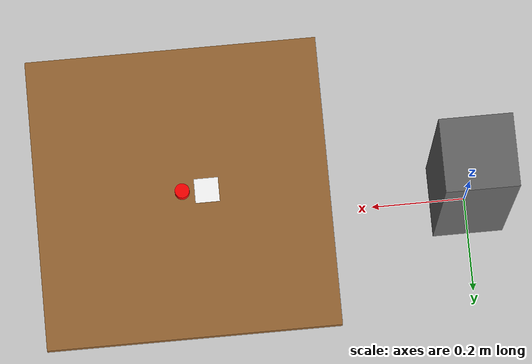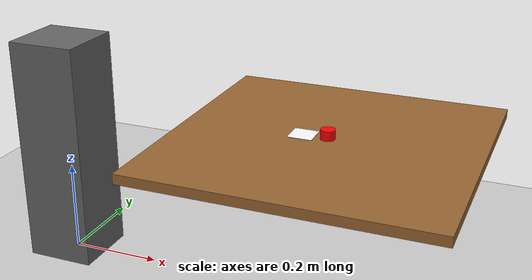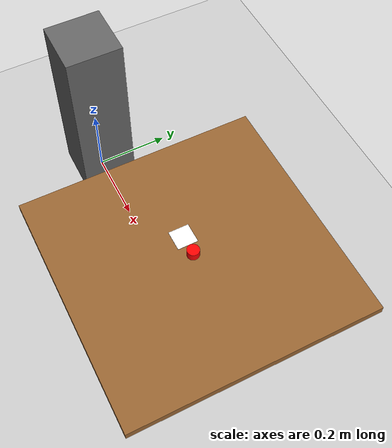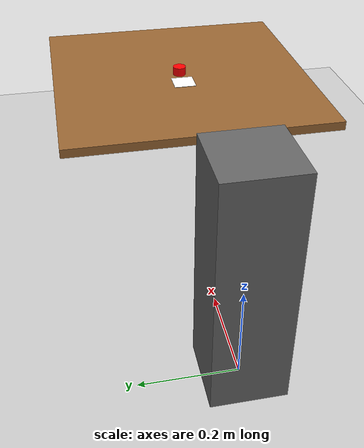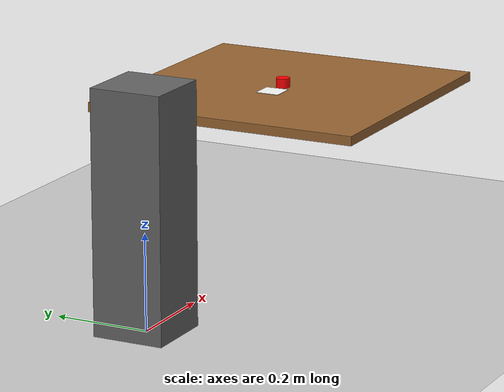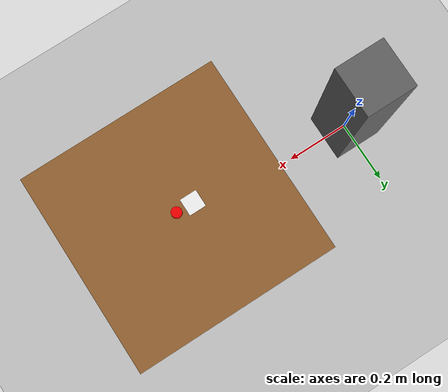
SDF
<?xml version="1.0" ?>
<sdf version="1.8">
  <world name="soft_wrist_world">
    <physics name="1ms" type="ignored">
      <max_step_size>0.001</max_step_size>
      <real_time_factor>1.0</real_time_factor>
    </physics>
    <plugin filename="gz-sim-physics-system" name="gz::sim::systems::Physics"/>
    <plugin filename="gz-sim-user-commands-system" name="gz::sim::systems::UserCommands"/>
    <plugin filename="gz-sim-scene-broadcaster-system" name="gz::sim::systems::SceneBroadcaster"/>
    <plugin filename="gz-sim-contact-system" name="gz::sim::systems::Contact"/>
    <plugin filename="gz-sim-sensors-system" name="gz::sim::systems::Sensors">
      <render_engine>ogre2</render_engine>
    </plugin>
    <light type="directional" name="sun">
      <cast_shadows>true</cast_shadows>
      <pose>0 0 10 0 0 0</pose>
      <diffuse>0.8 0.8 0.8 1</diffuse>
      <specular>0.2 0.2 0.2 1</specular>
      <direction>-0.5 0.1 -0.9</direction>
    </light>
    <model name="ground_plane">
      <static>true</static>
      <link name="link">
        <collision name="collision">
          <geometry><plane><normal>0 0 1</normal><size>100 100</size></plane></geometry>
        </collision>
        <visual name="visual">
          <geometry><plane><normal>0 0 1</normal><size>100 100</size></plane></geometry>
          <material><ambient>0.8 0.8 0.8 1</ambient><diffuse>0.8 0.8 0.8 1</diffuse></material>
        </visual>
      </link>
    </model>
    <model name="robot_pedestal">
      <static>true</static>
      <pose>0 0 0.25 0 0 0</pose>
      <link name="link">
        <collision name="collision">
          <geometry><box><size>0.15 0.15 0.5</size></box></geometry>
        </collision>
        <visual name="visual">
          <geometry><box><size>0.15 0.15 0.5</size></box></geometry>
          <material><ambient>0.4 0.4 0.4 1</ambient><diffuse>0.4 0.4 0.4 1</diffuse></material>
        </visual>
      </link>
    </model>
    <model name="table">
      <static>true</static>
      <pose>0.6 0 0.35 0 0 0</pose>
      <link name="link">
        <collision name="collision">
          <geometry><box><size>0.6 0.6 0.02</size></box></geometry>
        </collision>
        <visual name="visual">
          <geometry><box><size>0.6 0.6 0.02</size></box></geometry>
          <material><ambient>0.6 0.4 0.2 1</ambient><diffuse>0.6 0.4 0.2 1</diffuse></material>
        </visual>
      </link>
    </model>
    <model name="peg_hole_target">
      <static>true</static>
      <pose>0.6 0 0.37 0 0 0</pose>
      <link name="link">
        <collision name="collision">
          <geometry><cylinder><radius>0.015</radius><length>0.02</length></cylinder></geometry>
        </collision>
        <visual name="visual">
          <geometry><cylinder><radius>0.015</radius><length>0.02</length></cylinder></geometry>
          <material><ambient>1 0 0 1</ambient><diffuse>1 0 0 1</diffuse></material>
        </visual>
      </link>
    </model>

        <model name="aruco_marker">
      <static>true</static>
      <pose>0.55 0.0 0.362 0 0 0</pose>
      <link name="link">
        <visual name="visual">
          <geometry>
            <box><size>0.05 0.05 0.001</size></box>
          </geometry>
          <material>
            <diffuse>1 1 1 1</diffuse>
            <pbr>
              <metal>
                <albedo_map>model://soft_wrist_sim/meshes/aruco_marker_0.png</albedo_map>
              </metal>
            </pbr>
          </material>
        </visual>
        <collision name="collision">
          <geometry>
            <box><size>0.05 0.05 0.001</size></box>
          </geometry>
        </collision>
      </link>
    </model>
    <model name="overhead_camera">
      <static>true</static>
      <pose>0.55 0.0 1.2 0 1.5708 0</pose>
      <link name="link">
        <sensor name="overhead_cam" type="camera">
          <camera>
            <horizontal_fov>1.047</horizontal_fov>
            <image>
              <width>640</width>
              <height>480</height>
              <format>R8G8B8</format>
            </image>
            <clip>
              <near>0.01</near>
              <far>5.0</far>
            </clip>
          </camera>
          <always_on>1</always_on>
          <update_rate>10</update_rate>
          <visualize>true</visualize>
          <topic>/overhead_camera/image_raw</topic>
        </sensor>
      </link>
    </model>
  <gui fullscreen="0">
    <plugin filename="GzScene3D" name="3D View">
      <gz-gui>
        <title>3D View</title>
        <property type="bool" key="showTitleBar">false</property>
        <property type="string" key="state">docked</property>
      </gz-gui>
      <engine>ogre2</engine>
      <scene>scene</scene>
      <ambient_light>0.4 0.4 0.4</ambient_light>
      <background_color>0.8 0.8 0.8</background_color>
      <camera_pose>0.35 -0.35 0.35 0 0.5 2.4</camera_pose>
    </plugin>
  </gui>
  </world>
</sdf>
